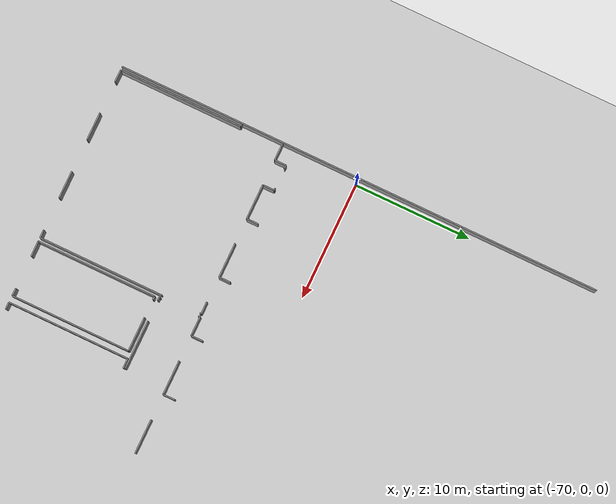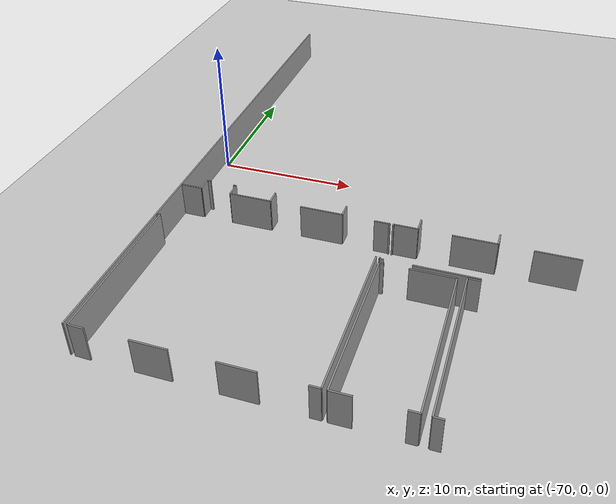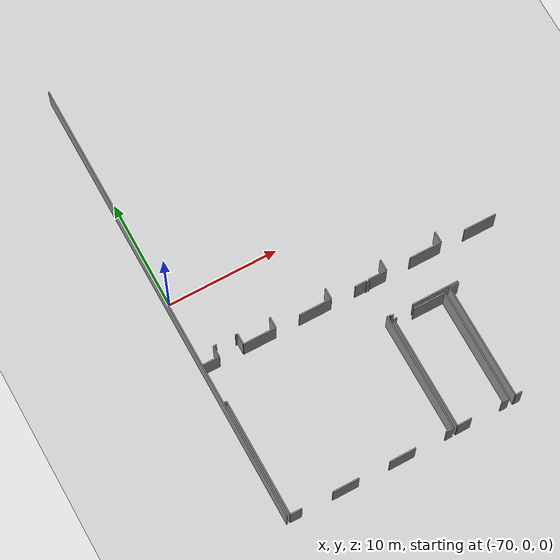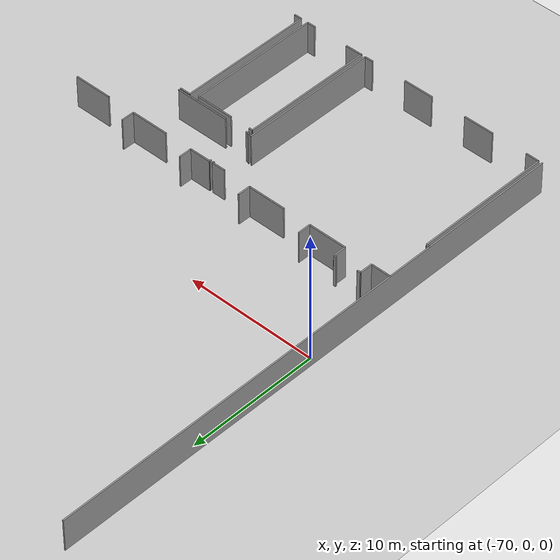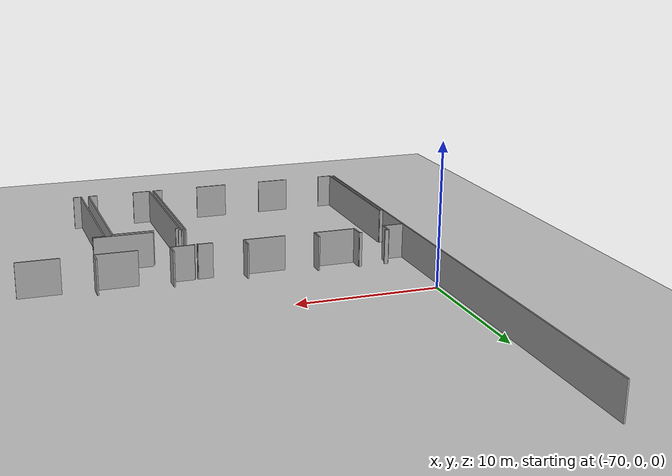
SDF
<sdf version="1.6">
 <world name="default">
  <model name="ground_plane">
   <static>1</static>
   <link name="link">
    <collision name="collision">
     <geometry><plane><normal>0 0 1</normal><size>100 100</size></plane></geometry>
     <surface><friction><ode><mu>100</mu><mu2>50</mu2></ode></friction></surface>
    </collision>
    <visual name="visual">
     <cast_shadows>0</cast_shadows>
     <geometry><plane><normal>0 0 1</normal><size>100 100</size></plane></geometry>
     <material>
      <script><uri>file://media/materials/scripts/gazebo.material</uri><name>Gazebo/Grey</name></script>
     </material>
    </visual>
   </link>
  </model>
  <model name="50055640">
   <static>1</static>
   <link name="Wall_8">
    <collision name="Wall_8_Collision">
     <geometry><box><size>10.5525661201 0.1 2.5</size></box></geometry>
     <pose>5.27628306005 0 1.25 0 0 0</pose>
    </collision>
    <visual name="Wall_8_Visual">
     <pose>5.27628306005 0 1.25 0 0 0</pose>
     <geometry><box><size>10.5525661201 0.1 2.5</size></box></geometry>
     <material>
      <script><uri>file://media/materials/scripts/gazebo.material</uri><name>Gazebo/Grey</name></script>
      <ambient>1 1 1 1</ambient>
     </material>
    </visual>
    <pose>0.282628559825 -41.7143509823 0 0 0 1.57079632679</pose>
   </link>
   <link name="Wall_9">
    <collision name="Wall_9_Collision">
     <geometry><box><size>0.282628559825 0.1 2.5</size></box></geometry>
     <pose>0.141314279913 0 1.25 0 0 0</pose>
    </collision>
    <visual name="Wall_9_Visual">
     <pose>0.141314279913 0 1.25 0 0 0</pose>
     <geometry><box><size>0.282628559825 0.1 2.5</size></box></geometry>
     <material>
      <script><uri>file://media/materials/scripts/gazebo.material</uri><name>Gazebo/Grey</name></script>
      <ambient>1 1 1 1</ambient>
     </material>
    </visual>
    <pose>0.282628559825 -31.1617848622 0 0 0 3.14159265359</pose>
   </link>
   <link name="Wall_10">
    <collision name="Wall_10_Collision">
     <geometry><box><size>1.54766739428 0.1 2.5</size></box></geometry>
     <pose>0.773833697142 0 1.25 0 0 0</pose>
    </collision>
    <visual name="Wall_10_Visual">
     <pose>0.773833697142 0 1.25 0 0 0</pose>
     <geometry><box><size>1.54766739428 0.1 2.5</size></box></geometry>
     <material>
      <script><uri>file://media/materials/scripts/gazebo.material</uri><name>Gazebo/Grey</name></script>
      <ambient>1 1 1 1</ambient>
     </material>
    </visual>
    <pose>0.0 -27.5467536423 0 0 0 0.0</pose>
   </link>
   <link name="Wall_11">
    <collision name="Wall_11_Collision">
     <geometry><box><size>0.989517234377 0.1 2.5</size></box></geometry>
     <pose>0.494758617189 0 1.25 0 0 0</pose>
    </collision>
    <visual name="Wall_11_Visual">
     <pose>0.494758617189 0 1.25 0 0 0</pose>
     <geometry><box><size>0.989517234377 0.1 2.5</size></box></geometry>
     <material>
      <script><uri>file://media/materials/scripts/gazebo.material</uri><name>Gazebo/Grey</name></script>
      <ambient>1 1 1 1</ambient>
     </material>
    </visual>
    <pose>1.54766739428 -27.5467536423 0 0 0 1.57079632679</pose>
   </link>
   <link name="Wall_12">
    <collision name="Wall_12_Collision">
     <geometry><box><size>0.275775420072 0.1 2.5</size></box></geometry>
     <pose>0.137887710036 0 1.25 0 0 0</pose>
    </collision>
    <visual name="Wall_12_Visual">
     <pose>0.137887710036 0 1.25 0 0 0</pose>
     <geometry><box><size>0.275775420072 0.1 2.5</size></box></geometry>
     <material>
      <script><uri>file://media/materials/scripts/gazebo.material</uri><name>Gazebo/Grey</name></script>
      <ambient>1 1 1 1</ambient>
     </material>
    </visual>
    <pose>1.54766739428 -26.5572364079 0 0 0 0.0</pose>
   </link>
   <link name="Wall_13">
    <collision name="Wall_13_Collision">
     <geometry><box><size>0.190999543124 0.1 2.5</size></box></geometry>
     <pose>0.095499771562 0 1.25 0 0 0</pose>
    </collision>
    <visual name="Wall_13_Visual">
     <pose>0.095499771562 0 1.25 0 0 0</pose>
     <geometry><box><size>0.190999543124 0.1 2.5</size></box></geometry>
     <material>
      <script><uri>file://media/materials/scripts/gazebo.material</uri><name>Gazebo/Grey</name></script>
      <ambient>1 1 1 1</ambient>
     </material>
    </visual>
    <pose>3.55462206203 -26.5572364079 0 0 0 0.0</pose>
   </link>
   <link name="Wall_14">
    <collision name="Wall_14_Collision">
     <geometry><box><size>0.996370374131 0.1 2.5</size></box></geometry>
     <pose>0.498185187065 0 1.25 0 0 0</pose>
    </collision>
    <visual name="Wall_14_Visual">
     <pose>0.498185187065 0 1.25 0 0 0</pose>
     <geometry><box><size>0.996370374131 0.1 2.5</size></box></geometry>
     <material>
      <script><uri>file://media/materials/scripts/gazebo.material</uri><name>Gazebo/Grey</name></script>
      <ambient>1 1 1 1</ambient>
     </material>
    </visual>
    <pose>3.74562160516 -26.5572364079 0 0 0 -1.57079632679</pose>
   </link>
   <link name="Wall_15">
    <collision name="Wall_15_Collision">
     <geometry><box><size>2.97895832276 0.1 2.5</size></box></geometry>
     <pose>1.48947916138 0 1.25 0 0 0</pose>
    </collision>
    <visual name="Wall_15_Visual">
     <pose>1.48947916138 0 1.25 0 0 0</pose>
     <geometry><box><size>2.97895832276 0.1 2.5</size></box></geometry>
     <material>
      <script><uri>file://media/materials/scripts/gazebo.material</uri><name>Gazebo/Grey</name></script>
      <ambient>1 1 1 1</ambient>
     </material>
    </visual>
    <pose>3.74562160516 -27.5536067821 0 0 0 0.0</pose>
   </link>
   <link name="Wall_16">
    <collision name="Wall_16_Collision">
     <geometry><box><size>0.999289304026 0.1 2.5</size></box></geometry>
     <pose>0.499644652013 0 1.25 0 0 0</pose>
    </collision>
    <visual name="Wall_16_Visual">
     <pose>0.499644652013 0 1.25 0 0 0</pose>
     <geometry><box><size>0.999289304026 0.1 2.5</size></box></geometry>
     <material>
      <script><uri>file://media/materials/scripts/gazebo.material</uri><name>Gazebo/Grey</name></script>
      <ambient>1 1 1 1</ambient>
     </material>
    </visual>
    <pose>6.72457992792 -27.5536067821 0 0 0 1.57079632679</pose>
   </link>
   <link name="Wall_20">
    <collision name="Wall_20_Collision">
     <geometry><box><size>2.96055637342 0.1 2.5</size></box></geometry>
     <pose>1.48027818671 0 1.25 0 0 0</pose>
    </collision>
    <visual name="Wall_20_Visual">
     <pose>1.48027818671 0 1.25 0 0 0</pose>
     <geometry><box><size>2.96055637342 0.1 2.5</size></box></geometry>
     <material>
      <script><uri>file://media/materials/scripts/gazebo.material</uri><name>Gazebo/Grey</name></script>
      <ambient>1 1 1 1</ambient>
     </material>
    </visual>
    <pose>8.90197471953 -27.5359662927 0 0 0 0.0</pose>
   </link>
   <link name="Wall_21">
    <collision name="Wall_21_Collision">
     <geometry><box><size>0.998020204071 0.1 2.5</size></box></geometry>
     <pose>0.499010102036 0 1.25 0 0 0</pose>
    </collision>
    <visual name="Wall_21_Visual">
     <pose>0.499010102036 0 1.25 0 0 0</pose>
     <geometry><box><size>0.998020204071 0.1 2.5</size></box></geometry>
     <material>
      <script><uri>file://media/materials/scripts/gazebo.material</uri><name>Gazebo/Grey</name></script>
      <ambient>1 1 1 1</ambient>
     </material>
    </visual>
    <pose>11.8625310929 -27.5359662927 0 0 0 1.57079632679</pose>
   </link>
   <link name="Wall_25">
    <collision name="Wall_25_Collision">
     <geometry><box><size>1.04662673232 0.1 2.5</size></box></geometry>
     <pose>0.523313366161 0 1.25 0 0 0</pose>
    </collision>
    <visual name="Wall_25_Visual">
     <pose>0.523313366161 0 1.25 0 0 0</pose>
     <geometry><box><size>1.04662673232 0.1 2.5</size></box></geometry>
     <material>
      <script><uri>file://media/materials/scripts/gazebo.material</uri><name>Gazebo/Grey</name></script>
      <ambient>1 1 1 1</ambient>
     </material>
    </visual>
    <pose>14.0678460836 -27.5619828418 0 0 0 0.0</pose>
   </link>
   <link name="Wall_26">
    <collision name="Wall_26_Collision">
     <geometry><box><size>0.124117975532 0.1 2.5</size></box></geometry>
     <pose>0.0620589877659 0 1.25 0 0 0</pose>
    </collision>
    <visual name="Wall_26_Visual">
     <pose>0.0620589877659 0 1.25 0 0 0</pose>
     <geometry><box><size>0.124117975532 0.1 2.5</size></box></geometry>
     <material>
      <script><uri>file://media/materials/scripts/gazebo.material</uri><name>Gazebo/Grey</name></script>
      <ambient>1 1 1 1</ambient>
     </material>
    </visual>
    <pose>15.1144728159 -27.5619828418 0 0 0 -1.57079632679</pose>
   </link>
   <link name="Wall_27">
    <collision name="Wall_27_Collision">
     <geometry><box><size>10.7143763643 0.1 2.5</size></box></geometry>
     <pose>5.35718818214 0 1.25 0 0 0</pose>
    </collision>
    <visual name="Wall_27_Visual">
     <pose>5.35718818214 0 1.25 0 0 0</pose>
     <geometry><box><size>10.7143763643 0.1 2.5</size></box></geometry>
     <material>
      <script><uri>file://media/materials/scripts/gazebo.material</uri><name>Gazebo/Grey</name></script>
      <ambient>1 1 1 1</ambient>
     </material>
    </visual>
    <pose>15.1144728159 -31.0165998274 0 0 0 -1.57079632679</pose>
   </link>
   <link name="Wall_28">
    <collision name="Wall_28_Collision">
     <geometry><box><size>0.679476115539 0.1 2.5</size></box></geometry>
     <pose>0.339738057769 0 1.25 0 0 0</pose>
    </collision>
    <visual name="Wall_28_Visual">
     <pose>0.339738057769 0 1.25 0 0 0</pose>
     <geometry><box><size>0.679476115539 0.1 2.5</size></box></geometry>
     <material>
      <script><uri>file://media/materials/scripts/gazebo.material</uri><name>Gazebo/Grey</name></script>
      <ambient>1 1 1 1</ambient>
     </material>
    </visual>
    <pose>15.1144728159 -41.7309761917 0 0 0 3.14159265359</pose>
   </link>
   <link name="Wall_29">
    <collision name="Wall_29_Collision">
     <geometry><box><size>2.3472003655 0.1 2.5</size></box></geometry>
     <pose>1.17360018275 0 1.25 0 0 0</pose>
    </collision>
    <visual name="Wall_29_Visual">
     <pose>1.17360018275 0 1.25 0 0 0</pose>
     <geometry><box><size>2.3472003655 0.1 2.5</size></box></geometry>
     <material>
      <script><uri>file://media/materials/scripts/gazebo.material</uri><name>Gazebo/Grey</name></script>
      <ambient>1 1 1 1</ambient>
     </material>
    </visual>
    <pose>11.6214021016 -41.7309761917 0 0 0 3.14159265359</pose>
   </link>
   <link name="Wall_30">
    <collision name="Wall_30_Collision">
     <geometry><box><size>2.36610995482 0.1 2.5</size></box></geometry>
     <pose>1.18305497741 0 1.25 0 0 0</pose>
    </collision>
    <visual name="Wall_30_Visual">
     <pose>1.18305497741 0 1.25 0 0 0</pose>
     <geometry><box><size>2.36610995482 0.1 2.5</size></box></geometry>
     <material>
      <script><uri>file://media/materials/scripts/gazebo.material</uri><name>Gazebo/Grey</name></script>
      <ambient>1 1 1 1</ambient>
     </material>
    </visual>
    <pose>6.47900908676 -41.7309761917 0 0 0 3.14159265359</pose>
   </link>
   <link name="Wall_31">
    <collision name="Wall_31_Collision">
     <geometry><box><size>1.04155611589 0.1 2.5</size></box></geometry>
     <pose>0.520778057943 0 1.25 0 0 0</pose>
    </collision>
    <visual name="Wall_31_Visual">
     <pose>0.520778057943 0 1.25 0 0 0</pose>
     <geometry><box><size>1.04155611589 0.1 2.5</size></box></geometry>
     <material>
      <script><uri>file://media/materials/scripts/gazebo.material</uri><name>Gazebo/Grey</name></script>
      <ambient>1 1 1 1</ambient>
     </material>
    </visual>
    <pose>1.32405198233 -41.7309761917 0 0 0 3.12563008067</pose>
   </link>
   <link name="Wall_38">
    <collision name="Wall_38_Collision">
     <geometry><box><size>0.126275445454 0.1 2.5</size></box></geometry>
     <pose>0.063137722727 0 1.25 0 0 0</pose>
    </collision>
    <visual name="Wall_38_Visual">
     <pose>0.063137722727 0 1.25 0 0 0</pose>
     <geometry><box><size>0.126275445454 0.1 2.5</size></box></geometry>
     <material>
      <script><uri>file://media/materials/scripts/gazebo.material</uri><name>Gazebo/Grey</name></script>
      <ambient>1 1 1 1</ambient>
     </material>
    </visual>
    <pose>15.3630894969 -31.1513782426 0 0 0 1.57079632679</pose>
   </link>
   <link name="Wall_39">
    <collision name="Wall_39_Collision">
     <geometry><box><size>0.157749124321 0.1 2.5</size></box></geometry>
     <pose>0.0788745621605 0 1.25 0 0 0</pose>
    </collision>
    <visual name="Wall_39_Visual">
     <pose>0.0788745621605 0 1.25 0 0 0</pose>
     <geometry><box><size>0.157749124321 0.1 2.5</size></box></geometry>
     <material>
      <script><uri>file://media/materials/scripts/gazebo.material</uri><name>Gazebo/Grey</name></script>
      <ambient>1 1 1 1</ambient>
     </material>
    </visual>
    <pose>15.3630894969 -27.693715417 0 0 0 1.57079632679</pose>
   </link>
   <link name="Wall_40">
    <collision name="Wall_40_Collision">
     <geometry><box><size>1.64678410072 0.1 2.5</size></box></geometry>
     <pose>0.823392050358 0 1.25 0 0 0</pose>
    </collision>
    <visual name="Wall_40_Visual">
     <pose>0.823392050358 0 1.25 0 0 0</pose>
     <geometry><box><size>1.64678410072 0.1 2.5</size></box></geometry>
     <material>
      <script><uri>file://media/materials/scripts/gazebo.material</uri><name>Gazebo/Grey</name></script>
      <ambient>1 1 1 1</ambient>
     </material>
    </visual>
    <pose>15.3630894969 -27.5359662927 0 0 0 0.0</pose>
   </link>
   <link name="Wall_41">
    <collision name="Wall_41_Collision">
     <geometry><box><size>1.00956901366 0.1 2.5</size></box></geometry>
     <pose>0.504784506828 0 1.25 0 0 0</pose>
    </collision>
    <visual name="Wall_41_Visual">
     <pose>0.504784506828 0 1.25 0 0 0</pose>
     <geometry><box><size>1.00956901366 0.1 2.5</size></box></geometry>
     <material>
      <script><uri>file://media/materials/scripts/gazebo.material</uri><name>Gazebo/Grey</name></script>
      <ambient>1 1 1 1</ambient>
     </material>
    </visual>
    <pose>17.0098735976 -27.5359662927 0 0 0 1.57079632679</pose>
   </link>
   <link name="Wall_45">
    <collision name="Wall_45_Collision">
     <geometry><box><size>2.93555510432 0.1 2.5</size></box></geometry>
     <pose>1.46777755216 0 1.25 0 0 0</pose>
    </collision>
    <visual name="Wall_45_Visual">
     <pose>1.46777755216 0 1.25 0 0 0</pose>
     <geometry><box><size>2.93555510432 0.1 2.5</size></box></geometry>
     <material>
      <script><uri>file://media/materials/scripts/gazebo.material</uri><name>Gazebo/Grey</name></script>
      <ambient>1 1 1 1</ambient>
     </material>
    </visual>
    <pose>19.2252144779 -27.5340626428 0 0 0 0.0</pose>
   </link>
   <link name="Wall_46">
    <collision name="Wall_46_Collision">
     <geometry><box><size>1.00677699376 0.1 2.5</size></box></geometry>
     <pose>0.503388496878 0 1.25 0 0 0</pose>
    </collision>
    <visual name="Wall_46_Visual">
     <pose>0.503388496878 0 1.25 0 0 0</pose>
     <geometry><box><size>1.00677699376 0.1 2.5</size></box></geometry>
     <material>
      <script><uri>file://media/materials/scripts/gazebo.material</uri><name>Gazebo/Grey</name></script>
      <ambient>1 1 1 1</ambient>
     </material>
    </visual>
    <pose>22.1607695822 -27.5340626428 0 0 0 1.57079632679</pose>
   </link>
   <link name="Wall_50">
    <collision name="Wall_50_Collision">
     <geometry><box><size>2.94837301386 0.1 2.5</size></box></geometry>
     <pose>1.47418650693 0 1.25 0 0 0</pose>
    </collision>
    <visual name="Wall_50_Visual">
     <pose>1.47418650693 0 1.25 0 0 0</pose>
     <geometry><box><size>2.94837301386 0.1 2.5</size></box></geometry>
     <material>
      <script><uri>file://media/materials/scripts/gazebo.material</uri><name>Gazebo/Grey</name></script>
      <ambient>1 1 1 1</ambient>
     </material>
    </visual>
    <pose>24.3789024824 -27.5340626428 0 0 0 0.0</pose>
   </link>
   <link name="Wall_80">
    <collision name="Wall_80_Collision">
     <geometry><box><size>4.20452814864 0.1 2.5</size></box></geometry>
     <pose>2.10226407432 0 1.25 0 0 0</pose>
    </collision>
    <visual name="Wall_80_Visual">
     <pose>2.10226407432 0 1.25 0 0 0</pose>
     <geometry><box><size>4.20452814864 0.1 2.5</size></box></geometry>
     <material>
      <script><uri>file://media/materials/scripts/gazebo.material</uri><name>Gazebo/Grey</name></script>
      <ambient>1 1 1 1</ambient>
     </material>
    </visual>
    <pose>21.6310472613 -31.1334839332 0 0 0 3.14159265359</pose>
   </link>
   <link name="Wall_81">
    <collision name="Wall_81_Collision">
     <geometry><box><size>0.259893885284 0.1 2.5</size></box></geometry>
     <pose>0.129946942642 0 1.25 0 0 0</pose>
    </collision>
    <visual name="Wall_81_Visual">
     <pose>0.129946942642 0 1.25 0 0 0</pose>
     <geometry><box><size>0.259893885284 0.1 2.5</size></box></geometry>
     <material>
      <script><uri>file://media/materials/scripts/gazebo.material</uri><name>Gazebo/Grey</name></script>
      <ambient>1 1 1 1</ambient>
     </material>
    </visual>
    <pose>15.6223666176 -31.1334839332 0 0 0 -3.07268576868</pose>
   </link>
   <link name="Wall_155">
    <collision name="Wall_155_Collision">
     <geometry><box><size>10.4422813341 0.1 2.5</size></box></geometry>
     <pose>5.22114066704 0 1.25 0 0 0</pose>
    </collision>
    <visual name="Wall_155_Visual">
     <pose>5.22114066704 0 1.25 0 0 0</pose>
     <geometry><box><size>10.4422813341 0.1 2.5</size></box></geometry>
     <material>
      <script><uri>file://media/materials/scripts/gazebo.material</uri><name>Gazebo/Grey</name></script>
      <ambient>1 1 1 1</ambient>
     </material>
    </visual>
    <pose>20.806132291 -41.7324991116 0 0 0 1.57079632679</pose>
   </link>
   <link name="Wall_156">
    <collision name="Wall_156_Collision">
     <geometry><box><size>0.835067769938 0.1 2.5</size></box></geometry>
     <pose>0.417533884969 0 1.25 0 0 0</pose>
    </collision>
    <visual name="Wall_156_Visual">
     <pose>0.417533884969 0 1.25 0 0 0</pose>
     <geometry><box><size>0.835067769938 0.1 2.5</size></box></geometry>
     <material>
      <script><uri>file://media/materials/scripts/gazebo.material</uri><name>Gazebo/Grey</name></script>
      <ambient>1 1 1 1</ambient>
     </material>
    </visual>
    <pose>20.806132291 -31.2902177776 0 0 0 0.0</pose>
   </link>
   <link name="Wall_160">
    <collision name="Wall_160_Collision">
     <geometry><box><size>0.601557715759 0.1 2.5</size></box></geometry>
     <pose>0.300778857879 0 1.25 0 0 0</pose>
    </collision>
    <visual name="Wall_160_Visual">
     <pose>0.300778857879 0 1.25 0 0 0</pose>
     <geometry><box><size>0.601557715759 0.1 2.5</size></box></geometry>
     <material>
      <script><uri>file://media/materials/scripts/gazebo.material</uri><name>Gazebo/Grey</name></script>
      <ambient>1 1 1 1</ambient>
     </material>
    </visual>
    <pose>21.4076856693 -41.7302147317 0 0 0 -3.13779520349</pose>
   </link>
   <link name="Wall_161">
    <collision name="Wall_161_Collision">
     <geometry><box><size>10.2297070917 0.1 2.5</size></box></geometry>
     <pose>5.11485354587 0 1.25 0 0 0</pose>
    </collision>
    <visual name="Wall_161_Visual">
     <pose>5.11485354587 0 1.25 0 0 0</pose>
     <geometry><box><size>10.2297070917 0.1 2.5</size></box></geometry>
     <material>
      <script><uri>file://media/materials/scripts/gazebo.material</uri><name>Gazebo/Grey</name></script>
      <ambient>1 1 1 1</ambient>
     </material>
    </visual>
    <pose>15.4378394842 -41.7324991116 0 0 0 1.57079632679</pose>
   </link>
   <link name="Wall_162">
    <collision name="Wall_162_Collision">
     <geometry><box><size>0.293415909437 0.1 2.5</size></box></geometry>
     <pose>0.146707954719 0 1.25 0 0 0</pose>
    </collision>
    <visual name="Wall_162_Visual">
     <pose>0.146707954719 0 1.25 0 0 0</pose>
     <geometry><box><size>0.293415909437 0.1 2.5</size></box></geometry>
     <material>
      <script><uri>file://media/materials/scripts/gazebo.material</uri><name>Gazebo/Grey</name></script>
      <ambient>1 1 1 1</ambient>
     </material>
    </visual>
    <pose>15.4378394842 -31.5027920199 0 0 0 0.0</pose>
   </link>
   <link name="Wall_163">
    <collision name="Wall_163_Collision">
     <geometry><box><size>2.92895578456 0.1 2.5</size></box></geometry>
     <pose>1.46447789228 0 1.25 0 0 0</pose>
    </collision>
    <visual name="Wall_163_Visual">
     <pose>1.46447789228 0 1.25 0 0 0</pose>
     <geometry><box><size>2.92895578456 0.1 2.5</size></box></geometry>
     <material>
      <script><uri>file://media/materials/scripts/gazebo.material</uri><name>Gazebo/Grey</name></script>
      <ambient>1 1 1 1</ambient>
     </material>
    </visual>
    <pose>17.2970709173 -31.5027920199 0 0 0 0.0</pose>
   </link>
   <link name="Wall_164">
    <collision name="Wall_164_Collision">
     <geometry><box><size>10.2166353622 0.1 2.5</size></box></geometry>
     <pose>5.1083176811 0 1.25 0 0 0</pose>
    </collision>
    <visual name="Wall_164_Visual">
     <pose>5.1083176811 0 1.25 0 0 0</pose>
     <geometry><box><size>10.2166353622 0.1 2.5</size></box></geometry>
     <material>
      <script><uri>file://media/materials/scripts/gazebo.material</uri><name>Gazebo/Grey</name></script>
      <ambient>1 1 1 1</ambient>
     </material>
    </visual>
    <pose>20.2260267019 -31.5027920199 0 0 0 -1.57079632679</pose>
   </link>
   <link name="Wall_165">
    <collision name="Wall_165_Collision">
     <geometry><box><size>0.656251586375 0.1 2.5</size></box></geometry>
     <pose>0.328125793187 0 1.25 0 0 0</pose>
    </collision>
    <visual name="Wall_165_Visual">
     <pose>0.328125793187 0 1.25 0 0 0</pose>
     <geometry><box><size>0.656251586375 0.1 2.5</size></box></geometry>
     <material>
      <script><uri>file://media/materials/scripts/gazebo.material</uri><name>Gazebo/Grey</name></script>
      <ambient>1 1 1 1</ambient>
     </material>
    </visual>
    <pose>20.2260267019 -41.7194273821 0 0 0 3.14159265359</pose>
   </link>
   <link name="Wall_166">
    <collision name="Wall_166_Collision">
     <geometry><box><size>1.31662918343 0.1 2.5</size></box></geometry>
     <pose>0.658314591717 0 1.25 0 0 0</pose>
    </collision>
    <visual name="Wall_166_Visual">
     <pose>0.658314591717 0 1.25 0 0 0</pose>
     <geometry><box><size>1.31662918343 0.1 2.5</size></box></geometry>
     <material>
      <script><uri>file://media/materials/scripts/gazebo.material</uri><name>Gazebo/Grey</name></script>
      <ambient>1 1 1 1</ambient>
     </material>
    </visual>
    <pose>16.7544037768 -41.7194273821 0 0 0 -3.131664312</pose>
   </link>
   <link name="Wall_511">
    <collision name="Wall_511_Collision">
     <geometry><box><size>41.7477283111 0.1 2.5</size></box></geometry>
     <pose>20.8738641555 0 1.25 0 0 0</pose>
    </collision>
    <visual name="Wall_511_Visual">
     <pose>20.8738641555 0 1.25 0 0 0</pose>
     <geometry><box><size>41.7477283111 0.1 2.5</size></box></geometry>
     <material>
      <script><uri>file://media/materials/scripts/gazebo.material</uri><name>Gazebo/Grey</name></script>
      <ambient>1 1 1 1</ambient>
     </material>
    </visual>
    <pose>0.0 -41.7477283111 0 0 0 1.57079632679</pose>
   </link>
   <pose>-70.4 20.8977283111 0 0 0 0</pose>
  </model>
 </world>
</sdf>
